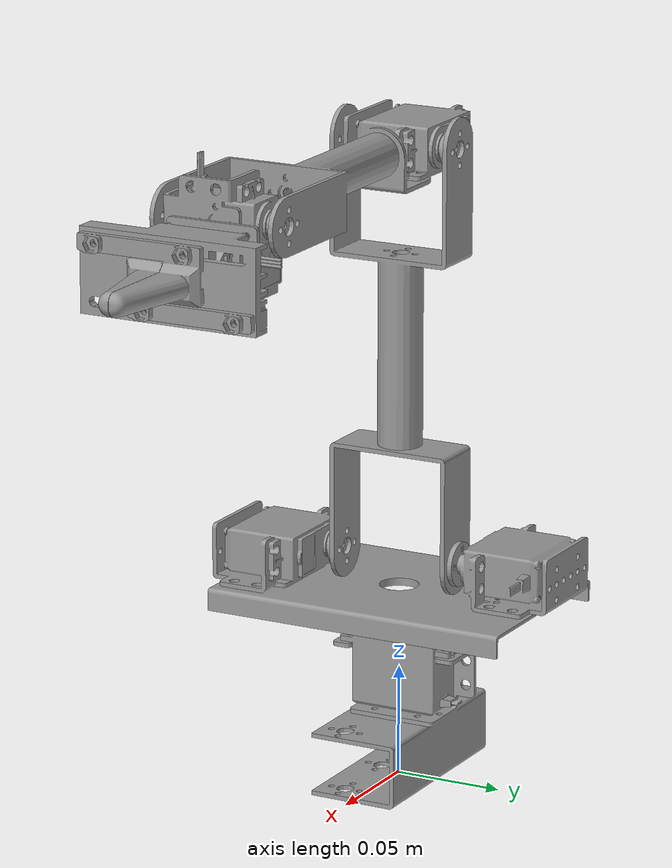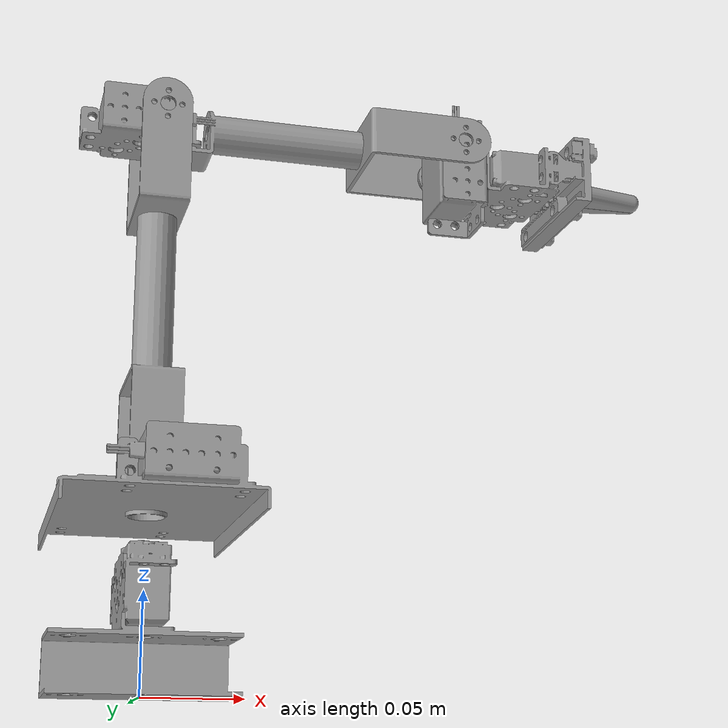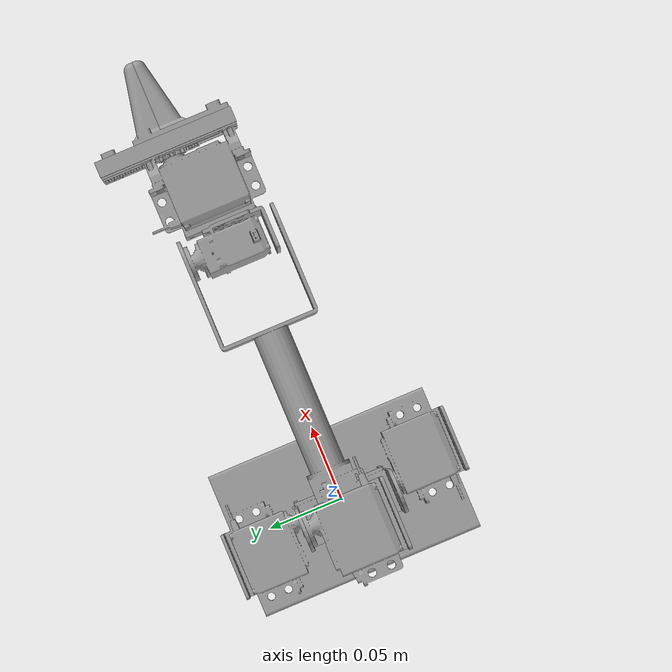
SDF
<sdf version='1.9'>
  <model name='chessaton'>
    <joint name='virtual_joint' type='fixed'>
      <pose relative_to='__model__'>0 0 0 0 0 0</pose>
      <parent>world</parent>
      <child>chessaton_link0</child>
    </joint>
    <link name='chessaton_link0'>
      <pose relative_to='virtual_joint'>0 0 0 0 0 0</pose>
      <inertial>
        <pose>-0.00088323 -3.593e-07 0.021799 0 0 0</pose>
        <mass>0.34999999999999998</mass>
        <inertia>
          <ixx>0.00040857000000000003</ixx>
          <ixy>-1.2568e-09</ixy>
          <ixz>-4.0914999999999998e-09</ixz>
          <iyy>0.00041214000000000002</iyy>
          <iyz>1.5948e-10</iyz>
          <izz>0.00079973000000000002</izz>
        </inertia>
      </inertial>
      <collision name='chessaton_link0_collision'>
        <pose>0 0 0 0 0 0</pose>
        <geometry>
          <mesh>
            <scale>1 1 1</scale>
            <uri>file:///home/ros/workspace/install/chessaton_description/share/chessaton_description/meshes/chessaton_link0.STL</uri>
          </mesh>
        </geometry>
        <surface>
          <contact>
            <ode>
              <kp>1000000</kp>
              <kd>1</kd>
            </ode>
          </contact>
          <friction>
            <ode>
              <mu>0.84999999999999998</mu>
              <mu2>0.84999999999999998</mu2>
            </ode>
          </friction>
        </surface>
      </collision>
      <visual name='chessaton_link0_visual'>
        <pose>0 0 0 0 0 0</pose>
        <geometry>
          <mesh>
            <scale>1 1 1</scale>
            <uri>file:///home/ros/workspace/install/chessaton_description/share/chessaton_description/meshes/chessaton_link0.STL</uri>
          </mesh>
        </geometry>
        <material>
          <script>
            <name>Gazebo/Grey</name>
            <uri>file://media/materials/scripts/gazebo.material</uri>
          </script>
          <diffuse>1 1 1 1</diffuse>
          <ambient>1 1 1 1</ambient>
        </material>
      </visual>
      <self_collide>false</self_collide>
    </link>
    <joint name='chessaton_joint1' type='revolute'>
      <pose relative_to='chessaton_link0'>0 0 0.07184 0 0 0</pose>
      <parent>chessaton_link0</parent>
      <child>chessaton_link1</child>
      <axis>
        <xyz>0 0 -1</xyz>
        <limit>
          <lower>-1.570796326794897</lower>
          <upper>1.570796326794897</upper>
          <effort>0</effort>
          <velocity>0.29999999999999999</velocity>
        </limit>
        <dynamics>
          <damping>0.10000000000000001</damping>
          <friction>0.10000000000000001</friction>
          <spring_reference>0</spring_reference>
          <spring_stiffness>0</spring_stiffness>
        </dynamics>
      </axis>
    </joint>
    <link name='chessaton_link1'>
      <pose relative_to='chessaton_joint1'>0 0 0 0 0 0</pose>
      <inertial>
        <pose>-2.4829e-06 1.8095e-11 0.025578 0 0 0</pose>
        <mass>0.11600000000000001</mass>
        <inertia>
          <ixx>5.4663000000000002e-05</ixx>
          <ixy>-1.3316000000000001e-07</ixy>
          <ixz>3.3525999999999998e-14</ixz>
          <iyy>4.2517e-05</iyy>
          <iyz>-8.2983000000000006e-14</iyz>
          <izz>8.9443000000000004e-05</izz>
        </inertia>
      </inertial>
      <collision name='chessaton_link1_collision'>
        <pose>0 0 0 0 0 0</pose>
        <geometry>
          <mesh>
            <scale>1 1 1</scale>
            <uri>file:///home/ros/workspace/install/chessaton_description/share/chessaton_description/meshes/chessaton_link1.STL</uri>
          </mesh>
        </geometry>
        <surface>
          <contact>
            <ode>
              <kp>1000000</kp>
              <kd>1</kd>
            </ode>
          </contact>
          <friction>
            <ode>
              <mu>0.84999999999999998</mu>
              <mu2>0.84999999999999998</mu2>
            </ode>
          </friction>
        </surface>
      </collision>
      <visual name='chessaton_link1_visual'>
        <pose>0 0 0 0 0 0</pose>
        <geometry>
          <mesh>
            <scale>1 1 1</scale>
            <uri>file:///home/ros/workspace/install/chessaton_description/share/chessaton_description/meshes/chessaton_link1.STL</uri>
          </mesh>
        </geometry>
        <material>
          <script>
            <name>Gazebo/Grey</name>
            <uri>file://media/materials/scripts/gazebo.material</uri>
          </script>
          <diffuse>0.62255 0.62255 0.62255 1</diffuse>
          <ambient>0.62255 0.62255 0.62255 1</ambient>
        </material>
      </visual>
      <self_collide>false</self_collide>
    </link>
    <joint name='chessaton_joint2' type='revolute'>
      <pose relative_to='chessaton_link1'>0 1.29770906784333e-05 0.0305688591051693 0 0 0</pose>
      <parent>chessaton_link1</parent>
      <child>chessaton_link2</child>
      <axis>
        <xyz>0 1 0</xyz>
        <limit>
          <lower>-1.570796326794897</lower>
          <upper>1.570796326794897</upper>
          <effort>0</effort>
          <velocity>0.29999999999999999</velocity>
        </limit>
        <dynamics>
          <damping>0.10000000000000001</damping>
          <friction>0.10000000000000001</friction>
          <spring_reference>0</spring_reference>
          <spring_stiffness>0</spring_stiffness>
        </dynamics>
      </axis>
    </joint>
    <link name='chessaton_link2'>
      <pose relative_to='chessaton_joint2'>0 0 0 0 0 0</pose>
      <inertial>
        <pose>-2.3338e-06 4.5723e-05 0.093503 0 0 0</pose>
        <mass>0.070999999999999994</mass>
        <inertia>
          <ixx>6.1321000000000005e-05</ixx>
          <ixy>-6.9446999999999998e-10</ixy>
          <ixz>4.4166000000000004e-12</ixz>
          <iyy>3.6390000000000002e-05</iyy>
          <iyz>-4.4750999999999998e-13</iyz>
          <izz>3.1035999999999999e-05</izz>
        </inertia>
      </inertial>
      <collision name='chessaton_link2_collision'>
        <pose>0 0 0 0 0 0</pose>
        <geometry>
          <mesh>
            <scale>1 1 1</scale>
            <uri>file:///home/ros/workspace/install/chessaton_description/share/chessaton_description/meshes/chessaton_link2.STL</uri>
          </mesh>
        </geometry>
        <surface>
          <contact>
            <ode>
              <kp>1000000</kp>
              <kd>1</kd>
            </ode>
          </contact>
          <friction>
            <ode>
              <mu>0.84999999999999998</mu>
              <mu2>0.84999999999999998</mu2>
            </ode>
          </friction>
        </surface>
      </collision>
      <visual name='chessaton_link2_visual'>
        <pose>0 0 0 0 0 0</pose>
        <geometry>
          <mesh>
            <scale>1 1 1</scale>
            <uri>file:///home/ros/workspace/install/chessaton_description/share/chessaton_description/meshes/chessaton_link2.STL</uri>
          </mesh>
        </geometry>
        <material>
          <script>
            <name>Gazebo/Grey</name>
            <uri>file://media/materials/scripts/gazebo.material</uri>
          </script>
          <diffuse>0.941176 0.941176 0.941176 1</diffuse>
          <ambient>0.941176 0.941176 0.941176 1</ambient>
        </material>
      </visual>
      <self_collide>false</self_collide>
    </link>
    <joint name='chessaton_joint3' type='revolute'>
      <pose relative_to='chessaton_link2'>0 0.025345720651074 0.187006906655083 0 0 0</pose>
      <parent>chessaton_link2</parent>
      <child>chessaton_link3</child>
      <axis>
        <xyz>0 1 0</xyz>
        <limit>
          <lower>-1.570796326794897</lower>
          <upper>1.570796326794897</upper>
          <effort>0</effort>
          <velocity>0.29999999999999999</velocity>
        </limit>
        <dynamics>
          <damping>0.10000000000000001</damping>
          <friction>0.10000000000000001</friction>
          <spring_reference>0</spring_reference>
          <spring_stiffness>0</spring_stiffness>
        </dynamics>
      </axis>
    </joint>
    <link name='chessaton_link3'>
      <pose relative_to='chessaton_joint3'>0 0 0 0 0 0</pose>
      <inertial>
        <pose>0.041523 -0.024547 -0.0018439 0 0 0</pose>
        <mass>0.01</mass>
        <inertia>
          <ixx>2.455e-05</ixx>
          <ixy>-7.2470000000000003e-09</ixy>
          <ixz>-2.7697000000000002e-07</ixz>
          <iyy>3.4978000000000003e-05</iyy>
          <iyz>4.524e-07</iyz>
          <izz>5.1335000000000002e-05</izz>
        </inertia>
      </inertial>
      <collision name='chessaton_link3_collision'>
        <pose>0 0 0 0 0 0</pose>
        <geometry>
          <mesh>
            <scale>1 1 1</scale>
            <uri>file:///home/ros/workspace/install/chessaton_description/share/chessaton_description/meshes/chessaton_link3.STL</uri>
          </mesh>
        </geometry>
        <surface>
          <contact>
            <ode>
              <kp>1000000</kp>
              <kd>1</kd>
            </ode>
          </contact>
          <friction>
            <ode>
              <mu>0.84999999999999998</mu>
              <mu2>0.84999999999999998</mu2>
            </ode>
          </friction>
        </surface>
      </collision>
      <visual name='chessaton_link3_visual'>
        <pose>0 0 0 0 0 0</pose>
        <geometry>
          <mesh>
            <scale>1 1 1</scale>
            <uri>file:///home/ros/workspace/install/chessaton_description/share/chessaton_description/meshes/chessaton_link3.STL</uri>
          </mesh>
        </geometry>
        <material>
          <script>
            <name>Gazebo/Grey</name>
            <uri>file://media/materials/scripts/gazebo.material</uri>
          </script>
          <diffuse>0.941176 0.941176 0.941176 1</diffuse>
          <ambient>0.941176 0.941176 0.941176 1</ambient>
        </material>
      </visual>
      <self_collide>false</self_collide>
    </link>
    <joint name='chessaton_joint4' type='revolute'>
      <pose relative_to='chessaton_link3'>0.157407990853242 0.00282292319687479 -0.000108863252950619 0 0 0</pose>
      <parent>chessaton_link3</parent>
      <child>chessaton_link4</child>
      <axis>
        <xyz>0 1 0</xyz>
        <limit>
          <lower>-1.570796326794897</lower>
          <upper>1.570796326794897</upper>
          <effort>0</effort>
          <velocity>0.29999999999999999</velocity>
        </limit>
        <dynamics>
          <damping>0.10000000000000001</damping>
          <friction>0.10000000000000001</friction>
          <spring_reference>0</spring_reference>
          <spring_stiffness>0</spring_stiffness>
        </dynamics>
      </axis>
    </joint>
    <link name='chessaton_link4'>
      <pose relative_to='chessaton_joint4'>0 0 0 0 0 0</pose>
      <inertial>
        <pose>0.02683363885910224 -0.0227045149743018 -0.01030261214487833 0 0 0</pose>
        <mass>0.1125</mass>
        <inertia>
          <ixx>3.522810161290297e-05</ixx>
          <ixy>-8.5942234932725127e-06</ixy>
          <ixz>9.3401235384077093e-07</ixz>
          <iyy>6.6674628198797159e-05</iyy>
          <iyz>7.7740711555380966e-08</iyz>
          <izz>7.824765285932461e-05</izz>
        </inertia>
      </inertial>
      <collision name='chessaton_link4_collision'>
        <pose>0 0 0 0 0 0</pose>
        <geometry>
          <mesh>
            <scale>1 1 1</scale>
            <uri>file:///home/ros/workspace/install/chessaton_description/share/chessaton_description/meshes/chessaton_link4.STL</uri>
          </mesh>
        </geometry>
        <surface>
          <contact>
            <ode>
              <kp>1000000</kp>
              <kd>1</kd>
            </ode>
          </contact>
          <friction>
            <ode>
              <mu>0.84999999999999998</mu>
              <mu2>0.84999999999999998</mu2>
            </ode>
          </friction>
        </surface>
      </collision>
      <collision name='chessaton_link4_fixed_joint_lump__chessaton_gripper_collision_1'>
        <pose>0.070608507146197 -0.0126359232516508 -0.0087074752469517 0 0 0</pose>
        <geometry>
          <mesh>
            <scale>1 1 1</scale>
            <uri>file:///home/ros/workspace/install/chessaton_description/share/chessaton_description/meshes/chessaton_gripper.STL</uri>
          </mesh>
        </geometry>
        <surface>
          <contact>
            <ode>
              <kp>1000000</kp>
              <kd>1</kd>
            </ode>
          </contact>
          <friction>
            <ode>
              <mu>0.84999999999999998</mu>
              <mu2>0.84999999999999998</mu2>
            </ode>
          </friction>
        </surface>
      </collision>
      <visual name='chessaton_link4_visual'>
        <pose>0 0 0 0 0 0</pose>
        <geometry>
          <mesh>
            <scale>1 1 1</scale>
            <uri>file:///home/ros/workspace/install/chessaton_description/share/chessaton_description/meshes/chessaton_link4.STL</uri>
          </mesh>
        </geometry>
        <material>
          <script>
            <name>Gazebo/Grey</name>
            <uri>file://media/materials/scripts/gazebo.material</uri>
          </script>
          <diffuse>0.941175 0.941175 0.941175 1</diffuse>
          <ambient>0.941175 0.941175 0.941175 1</ambient>
        </material>
      </visual>
      <visual name='chessaton_link4_fixed_joint_lump__chessaton_gripper_visual_1'>
        <pose>0.070608507146197 -0.0126359232516508 -0.0087074752469517 0 0 0</pose>
        <geometry>
          <mesh>
            <scale>1 1 1</scale>
            <uri>file:///home/ros/workspace/install/chessaton_description/share/chessaton_description/meshes/chessaton_gripper.STL</uri>
          </mesh>
        </geometry>
        <material>
          <script>
            <name>Gazebo/Grey</name>
            <uri>file://media/materials/scripts/gazebo.material</uri>
          </script>
          <diffuse>0.62255 0.62255 0.62255 1</diffuse>
          <ambient>0.62255 0.62255 0.62255 1</ambient>
        </material>
      </visual>
      <self_collide>false</self_collide>
    </link>
    <joint name='chessaton_hand_tcp_roll_virtual_joint' type='revolute'>
      <pose relative_to='chessaton_link4'>0.100608507146197 -0.0126359232516508 -0.0087074752469517 0 0 0</pose>
      <parent>chessaton_link4</parent>
      <child>chessaton_hand_tcp_roll</child>
      <axis>
        <xyz>-1 0 0</xyz>
        <limit>
          <lower>-1.570796326794897</lower>
          <upper>1.570796326794897</upper>
          <effort>0</effort>
          <velocity>6</velocity>
        </limit>
        <dynamics>
          <damping>1</damping>
          <friction>1</friction>
          <spring_reference>0</spring_reference>
          <spring_stiffness>0</spring_stiffness>
        </dynamics>
      </axis>
    </joint>
    <link name='chessaton_hand_tcp_roll'>
      <pose relative_to='chessaton_hand_tcp_roll_virtual_joint'>0 0 0 0 0 0</pose>
      <inertial>
        <pose>0.011394 -0.0086324 -0.005 0 0 0</pose>
        <mass>0.0088000000000000005</mass>
        <inertia>
          <ixx>6.0645999999999999e-07</ixx>
          <ixy>-1.4140999999999999e-07</ixy>
          <ixz>1.2141999999999999e-21</ixz>
          <iyy>9.0396999999999996e-07</iyy>
          <iyz>7.2150999999999998e-22</iyz>
          <izz>8.4376999999999999e-07</izz>
        </inertia>
      </inertial>
      <self_collide>false</self_collide>
    </link>
    <joint name='chessaton_hand_tcp_yaw_virtual_joint' type='revolute'>
      <pose relative_to='chessaton_hand_tcp_roll'>0 0 0 0 0 0</pose>
      <parent>chessaton_hand_tcp_roll</parent>
      <child>chessaton_hand_tcp_yaw</child>
      <axis>
        <xyz>0 0 -1</xyz>
        <limit>
          <lower>-1.570796326794897</lower>
          <upper>1.570796326794897</upper>
          <effort>0</effort>
          <velocity>6</velocity>
        </limit>
        <dynamics>
          <damping>1</damping>
          <friction>1</friction>
          <spring_reference>0</spring_reference>
          <spring_stiffness>0</spring_stiffness>
        </dynamics>
      </axis>
    </joint>
    <link name='chessaton_hand_tcp_yaw'>
      <pose relative_to='chessaton_hand_tcp_yaw_virtual_joint'>0 0 0 0 0 0</pose>
      <inertial>
        <pose>0.011394 -0.0086324 -0.005 0 0 0</pose>
        <mass>0.017600000000000001</mass>
        <inertia>
          <ixx>1.21292e-06</ixx>
          <ixy>-2.8281999999999999e-07</ixy>
          <ixz>2.3293406049493259e-21</ixz>
          <iyy>1.8079399999999999e-06</iyy>
          <iyz>1.482307657695026e-21</iyz>
          <izz>1.68754e-06</izz>
        </inertia>
      </inertial>
      <self_collide>false</self_collide>
    </link>
    <joint name='left_finger_joint' type='prismatic'>
      <pose relative_to='chessaton_link4'>0.070608507146197 -0.0126359232516508 -0.0087074752469517 0 0 0</pose>
      <parent>chessaton_link4</parent>
      <child>left_finger</child>
      <axis>
        <xyz>0 1 0</xyz>
        <limit>
          <lower>0</lower>
          <upper>0.023</upper>
          <effort>100</effort>
          <velocity>0.01</velocity>
        </limit>
        <dynamics>
          <damping>1</damping>
          <friction>1</friction>
          <spring_reference>0</spring_reference>
          <spring_stiffness>0</spring_stiffness>
        </dynamics>
      </axis>
    </joint>
    <link name='left_finger'>
      <pose relative_to='left_finger_joint'>0 0 0 0 0 0</pose>
      <inertial>
        <pose>0.012703 0.0015457 0.0030231 0 0 0</pose>
        <mass>0.0060000000000000001</mass>
        <inertia>
          <ixx>8.3567000000000002e-07</ixx>
          <ixy>-1.3337000000000001e-07</ixy>
          <ixz>1.7186999999999999e-07</ixz>
          <iyy>1.1252e-06</iyy>
          <iyz>1.949e-07</iyz>
          <izz>1.5628000000000001e-06</izz>
        </inertia>
      </inertial>
      <collision name='left_finger_collision'>
        <pose>0 0 0 0 0 0</pose>
        <geometry>
          <mesh>
            <scale>1 1 1</scale>
            <uri>file:///home/ros/workspace/install/chessaton_description/share/chessaton_description/meshes/left_finger.STL</uri>
          </mesh>
        </geometry>
        <surface>
          <contact>
            <ode>
              <kp>1000000</kp>
              <kd>1</kd>
              <min_depth>0.001</min_depth>
            </ode>
          </contact>
          <friction>
            <ode>
              <mu>1.1499999999999999</mu>
              <mu2>1.1499999999999999</mu2>
            </ode>
          </friction>
        </surface>
      </collision>
      <visual name='left_finger_visual'>
        <pose>0 0 0 0 0 0</pose>
        <geometry>
          <mesh>
            <scale>1 1 1</scale>
            <uri>file:///home/ros/workspace/install/chessaton_description/share/chessaton_description/meshes/left_finger.STL</uri>
          </mesh>
        </geometry>
        <material>
          <script>
            <name>Gazebo/Grey</name>
            <uri>file://media/materials/scripts/gazebo.material</uri>
          </script>
          <diffuse>0.990196 1 1 1</diffuse>
          <ambient>0.990196 1 1 1</ambient>
        </material>
      </visual>
      <self_collide>false</self_collide>
    </link>
    <joint name='right_finger_joint' type='prismatic'>
      <pose relative_to='chessaton_link4'>0.070608507146197 -0.0126359232516508 -0.0087074752469517 0 0 0</pose>
      <parent>chessaton_link4</parent>
      <child>right_finger</child>
      <axis>
        <xyz>0 1 0</xyz>
        <limit>
          <lower>-0.023</lower>
          <upper>0</upper>
          <effort>100</effort>
          <velocity>0.01</velocity>
        </limit>
        <dynamics>
          <damping>1</damping>
          <friction>1</friction>
          <spring_reference>0</spring_reference>
          <spring_stiffness>0</spring_stiffness>
        </dynamics>
      </axis>
    </joint>
    <link name='right_finger'>
      <pose relative_to='right_finger_joint'>0 0 0 0 0 0</pose>
      <inertial>
        <pose>0.012704 -0.0015462 -0.0030231 0 0 0</pose>
        <mass>0.0060000000000000001</mass>
        <inertia>
          <ixx>8.357e-07</ixx>
          <ixy>1.3337000000000001e-07</ixy>
          <ixz>-1.7186e-07</ixz>
          <iyy>1.1252e-06</iyy>
          <iyz>1.9490999999999999e-07</iyz>
          <izz>1.5629000000000001e-06</izz>
        </inertia>
      </inertial>
      <collision name='right_finger_collision'>
        <pose>0 0 0 0 0 0</pose>
        <geometry>
          <mesh>
            <scale>1 1 1</scale>
            <uri>file:///home/ros/workspace/install/chessaton_description/share/chessaton_description/meshes/right_finger.STL</uri>
          </mesh>
        </geometry>
        <surface>
          <contact>
            <ode>
              <kp>1000000</kp>
              <kd>1</kd>
              <min_depth>0.001</min_depth>
            </ode>
          </contact>
          <friction>
            <ode>
              <mu>1.1499999999999999</mu>
              <mu2>1.1499999999999999</mu2>
            </ode>
          </friction>
        </surface>
      </collision>
      <visual name='right_finger_visual'>
        <pose>0 0 0 0 0 0</pose>
        <geometry>
          <mesh>
            <scale>1 1 1</scale>
            <uri>file:///home/ros/workspace/install/chessaton_description/share/chessaton_description/meshes/right_finger.STL</uri>
          </mesh>
        </geometry>
        <material>
          <script>
            <name>Gazebo/Grey</name>
            <uri>file://media/materials/scripts/gazebo.material</uri>
          </script>
          <diffuse>0.9902 1 1 1</diffuse>
          <ambient>0.9902 1 1 1</ambient>
        </material>
      </visual>
      <self_collide>false</self_collide>
    </link>
    <plugin name='gazebo_grasp_fix' filename='libgazebo_grasp_fix.so'>
      <arm>
        <arm_name>chessaton</arm_name>
        <palm_link>chessaton_link4</palm_link>
        <gripper_link>right_finger</gripper_link>
        <gripper_link>left_finger</gripper_link>
      </arm>
      <forces_angle_tolerance>165</forces_angle_tolerance>
      <update_rate>60</update_rate>
      <grip_count_threshold>1</grip_count_threshold>
      <max_grip_count>20</max_grip_count>
      <release_tolerance>0.0004</release_tolerance>
      <disable_collisions_on_attach>false</disable_collisions_on_attach>
      <contact_topic>__default_topic__</contact_topic>
    </plugin>
    <plugin name='gazebo_ros2_control' filename='libgazebo_ros2_control.so'>
      <parameters>/home/ros/workspace/install/chessaton_description/share/chessaton_description/config/controllers_position.yaml</parameters>
    </plugin>
    <frame name='gripper_joint' attached_to='chessaton_link4'>
      <pose>0.070609 -0.012636 -0.008707 0 -0 0</pose>
    </frame>
    <frame name='chessaton_gripper' attached_to='gripper_joint'/>
    <frame name='chessaton_hand_tcp_virtual_joint' attached_to='chessaton_hand_tcp_yaw'>
      <pose>0 0 0 0 -0 0</pose>
    </frame>
    <frame name='chessaton_hand_tcp' attached_to='chessaton_hand_tcp_virtual_joint'/>
  </model>
</sdf>
